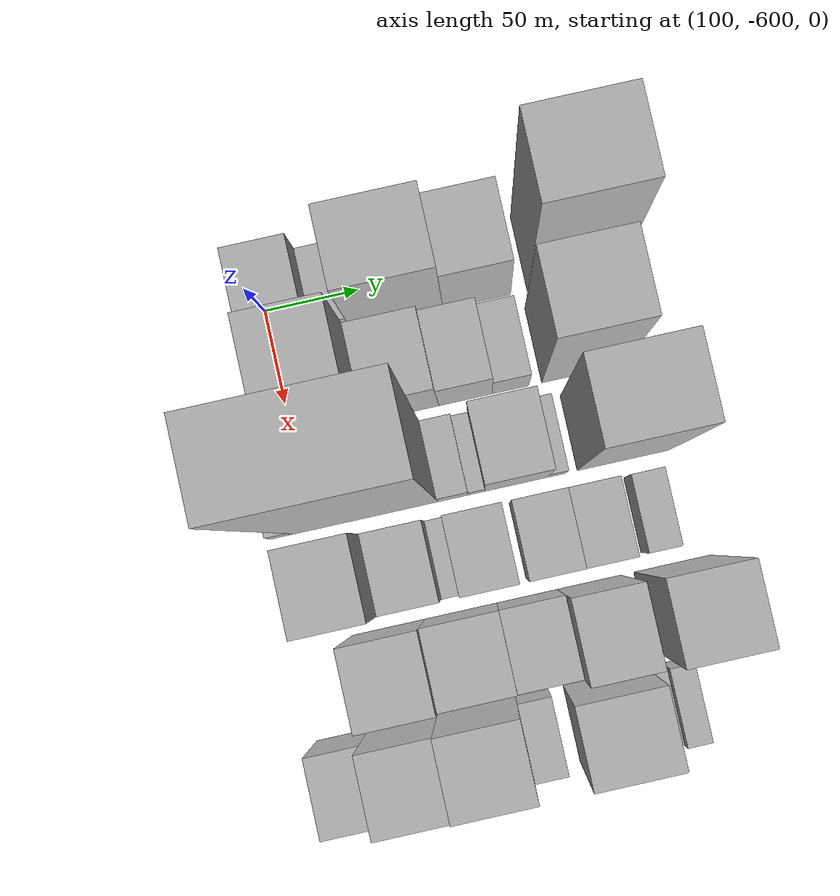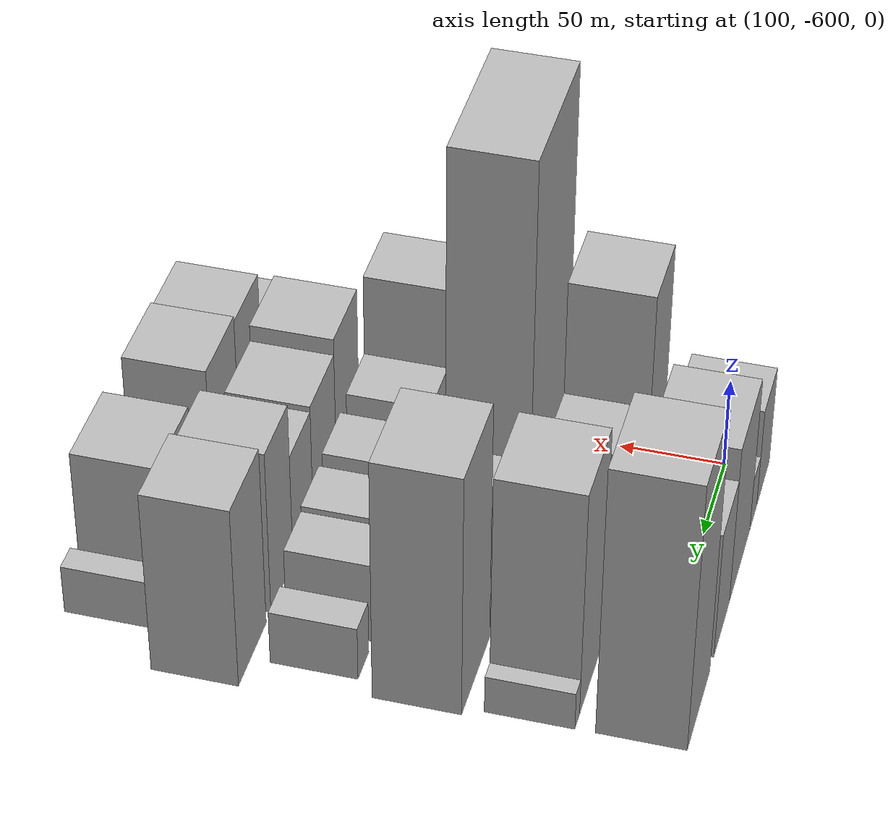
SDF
<sdf version="1.6">
 <world name="default">
  <model name="building_7">
   <static>1</static>
   <pose>100.0000 -591.0079 0 0.000000 0.000000 0.000000</pose>
   <link name="link">
    <pose>0 0 28.50 0 0 0</pose>
    <collision name="collision"><geometry><box><size>40.0000 32.1493 57.0000</size></box></geometry></collision>
    <visual name="visual">
     <cast_shadows>0</cast_shadows>
     <geometry><box><size>40.0000 32.1493 57.0000</size></box></geometry>
     <material>
      <script>
       <uri>model://HANNAS_wall/materials/scripts</uri>
       <uri>model://HANNAS_wall/materials/textures</uri>
       <name>vrc/HANNAS_wall</name>
      </script>
     </material>
    </visual>
   </link>
  </model>
  <model name="building_8">
   <static>1</static>
   <pose>100.0000 -566.2766 0 0.000000 0.000000 0.000000</pose>
   <link name="link">
    <pose>0 0 15.00 0 0 0</pose>
    <collision name="collision"><geometry><box><size>40.0000 17.3134 30.0000</size></box></geometry></collision>
    <visual name="visual">
     <cast_shadows>0</cast_shadows>
     <geometry><box><size>40.0000 17.3134 30.0000</size></box></geometry>
     <material>
      <script>
       <uri>model://HANNAS_wall/materials/scripts</uri>
       <uri>model://HANNAS_wall/materials/textures</uri>
       <name>vrc/HANNAS_wall</name>
      </script>
     </material>
    </visual>
   </link>
  </model>
  <model name="building_9">
   <static>1</static>
   <pose>100.0000 -533.0043 0 0.000000 0.000000 0.000000</pose>
   <link name="link">
    <pose>0 0 45.00 0 0 0</pose>
    <collision name="collision"><geometry><box><size>40.0000 49.2311 90.0000</size></box></geometry></collision>
    <visual name="visual">
     <cast_shadows>0</cast_shadows>
     <geometry><box><size>40.0000 49.2311 90.0000</size></box></geometry>
     <material>
      <script>
       <uri>model://HANNAS_wall/materials/scripts</uri>
       <uri>model://HANNAS_wall/materials/textures</uri>
       <name>vrc/HANNAS_wall</name>
      </script>
     </material>
    </visual>
   </link>
  </model>
  <model name="building_10">
   <static>1</static>
   <pose>100.0000 -490.3262 0 0.000000 0.000000 0.000000</pose>
   <link name="link">
    <pose>0 0 36.00 0 0 0</pose>
    <collision name="collision"><geometry><box><size>40.0000 36.1251 72.0000</size></box></geometry></collision>
    <visual name="visual">
     <cast_shadows>0</cast_shadows>
     <geometry><box><size>40.0000 36.1251 72.0000</size></box></geometry>
     <material>
      <script>
       <uri>model://HANNAS_wall/materials/scripts</uri>
       <uri>model://HANNAS_wall/materials/textures</uri>
       <name>vrc/HANNAS_wall</name>
      </script>
     </material>
    </visual>
   </link>
  </model>
  <model name="building_11">
   <static>1</static>
   <pose>100.0000 -438.5817 0 0.000000 0.000000 0.000000</pose>
   <link name="link">
    <pose>0 0 75.00 0 0 0</pose>
    <collision name="collision"><geometry><box><size>40.0000 49.3639 150.0000</size></box></geometry></collision>
    <visual name="visual">
     <cast_shadows>0</cast_shadows>
     <geometry><box><size>40.0000 49.3639 150.0000</size></box></geometry>
     <material>
      <script>
       <uri>model://HANNAS_wall/materials/scripts</uri>
       <uri>model://HANNAS_wall/materials/textures</uri>
       <name>vrc/HANNAS_wall</name>
      </script>
     </material>
    </visual>
   </link>
  </model>
  <model name="building_56">
   <static>1</static>
   <pose>149.0000 -576.7092 0 0.000000 0.000000 0.000000</pose>
   <link name="link">
    <pose>0 0 63.00 0 0 0</pose>
    <collision name="collision"><geometry><box><size>40.0000 39.1944 126.0000</size></box></geometry></collision>
    <visual name="visual">
     <cast_shadows>0</cast_shadows>
     <geometry><box><size>40.0000 39.1944 126.0000</size></box></geometry>
     <material>
      <script>
       <uri>model://HANNAS_wall/materials/scripts</uri>
       <uri>model://HANNAS_wall/materials/textures</uri>
       <name>vrc/HANNAS_wall</name>
      </script>
     </material>
    </visual>
   </link>
  </model>
  <model name="building_57">
   <static>1</static>
   <pose>149.0000 -539.3363 0 0.000000 0.000000 0.000000</pose>
   <link name="link">
    <pose>0 0 31.50 0 0 0</pose>
    <collision name="collision"><geometry><box><size>40.0000 35.5513 63.0000</size></box></geometry></collision>
    <visual name="visual">
     <cast_shadows>0</cast_shadows>
     <geometry><box><size>40.0000 35.5513 63.0000</size></box></geometry>
     <material>
      <script>
       <uri>model://HANNAS_wall/materials/scripts</uri>
       <uri>model://HANNAS_wall/materials/textures</uri>
       <name>vrc/HANNAS_wall</name>
      </script>
     </material>
    </visual>
   </link>
  </model>
  <model name="building_58">
   <static>1</static>
   <pose>149.0000 -507.3380 0 0.000000 0.000000 0.000000</pose>
   <link name="link">
    <pose>0 0 27.00 0 0 0</pose>
    <collision name="collision"><geometry><box><size>40.0000 28.4451 54.0000</size></box></geometry></collision>
    <visual name="visual">
     <cast_shadows>0</cast_shadows>
     <geometry><box><size>40.0000 28.4451 54.0000</size></box></geometry>
     <material>
      <script>
       <uri>model://HANNAS_wall/materials/scripts</uri>
       <uri>model://HANNAS_wall/materials/textures</uri>
       <name>vrc/HANNAS_wall</name>
      </script>
     </material>
    </visual>
   </link>
  </model>
  <model name="building_59">
   <static>1</static>
   <pose>149.0000 -483.3165 0 0.000000 0.000000 0.000000</pose>
   <link name="link">
    <pose>0 0 19.50 0 0 0</pose>
    <collision name="collision"><geometry><box><size>40.0000 19.5980 39.0000</size></box></geometry></collision>
    <visual name="visual">
     <cast_shadows>0</cast_shadows>
     <geometry><box><size>40.0000 19.5980 39.0000</size></box></geometry>
     <material>
      <script>
       <uri>model://HANNAS_wall/materials/scripts</uri>
       <uri>model://HANNAS_wall/materials/textures</uri>
       <name>vrc/HANNAS_wall</name>
      </script>
     </material>
    </visual>
   </link>
  </model>
  <model name="building_60">
   <static>1</static>
   <pose>149.0000 -444.5563 0 0.000000 0.000000 0.000000</pose>
   <link name="link">
    <pose>0 0 63.00 0 0 0</pose>
    <collision name="collision"><geometry><box><size>40.0000 43.9225 126.0000</size></box></geometry></collision>
    <visual name="visual">
     <cast_shadows>0</cast_shadows>
     <geometry><box><size>40.0000 43.9225 126.0000</size></box></geometry>
     <material>
      <script>
       <uri>model://HANNAS_wall/materials/scripts</uri>
       <uri>model://HANNAS_wall/materials/textures</uri>
       <name>vrc/HANNAS_wall</name>
      </script>
     </material>
    </visual>
   </link>
  </model>
  <model name="building_61">
   <static>1</static>
   <pose>149.0000 -418.1345 0 0.000000 0.000000 0.000000</pose>
   <link name="link">
    <pose>0 0 10.50 0 0 0</pose>
    <collision name="collision"><geometry><box><size>40.0000 8.9210 21.0000</size></box></geometry></collision>
    <visual name="visual">
     <cast_shadows>0</cast_shadows>
     <geometry><box><size>40.0000 8.9210 21.0000</size></box></geometry>
     <material>
      <script>
       <uri>model://HANNAS_wall/materials/scripts</uri>
       <uri>model://HANNAS_wall/materials/textures</uri>
       <name>vrc/HANNAS_wall</name>
      </script>
     </material>
    </visual>
   </link>
  </model>
  <model name="building_100">
   <static>1</static>
   <pose>198.0000 -615.2436 0 0.000000 0.000000 0.000000</pose>
   <link name="link">
    <pose>0 0 12.00 0 0 0</pose>
    <collision name="collision"><geometry><box><size>40.0000 11.6297 24.0000</size></box></geometry></collision>
    <visual name="visual">
     <cast_shadows>0</cast_shadows>
     <geometry><box><size>40.0000 11.6297 24.0000</size></box></geometry>
     <material>
      <script>
       <uri>model://HANNAS_wall/materials/scripts</uri>
       <uri>model://HANNAS_wall/materials/textures</uri>
       <name>vrc/HANNAS_wall</name>
      </script>
     </material>
    </visual>
   </link>
  </model>
  <model name="building_101">
   <static>1</static>
   <pose>198.0000 -571.0643 0 0.000000 0.000000 0.000000</pose>
   <link name="link">
    <pose>0 0 103.50 0 0 0</pose>
    <collision name="collision"><geometry><box><size>40.0000 76.7288 207.0000</size></box></geometry></collision>
    <visual name="visual">
     <cast_shadows>0</cast_shadows>
     <geometry><box><size>40.0000 76.7288 207.0000</size></box></geometry>
     <material>
      <script>
       <uri>model://HANNAS_wall/materials/scripts</uri>
       <uri>model://HANNAS_wall/materials/textures</uri>
       <name>vrc/HANNAS_wall</name>
      </script>
     </material>
    </visual>
   </link>
  </model>
  <model name="building_102">
   <static>1</static>
   <pose>198.0000 -524.7663 0 0.000000 0.000000 0.000000</pose>
   <link name="link">
    <pose>0 0 15.00 0 0 0</pose>
    <collision name="collision"><geometry><box><size>40.0000 15.8673 30.0000</size></box></geometry></collision>
    <visual name="visual">
     <cast_shadows>0</cast_shadows>
     <geometry><box><size>40.0000 15.8673 30.0000</size></box></geometry>
     <material>
      <script>
       <uri>model://HANNAS_wall/materials/scripts</uri>
       <uri>model://HANNAS_wall/materials/textures</uri>
       <name>vrc/HANNAS_wall</name>
      </script>
     </material>
    </visual>
   </link>
  </model>
  <model name="building_103">
   <static>1</static>
   <pose>198.0000 -512.4094 0 0.000000 0.000000 0.000000</pose>
   <link name="link">
    <pose>0 0 10.50 0 0 0</pose>
    <collision name="collision"><geometry><box><size>40.0000 8.8465 21.0000</size></box></geometry></collision>
    <visual name="visual">
     <cast_shadows>0</cast_shadows>
     <geometry><box><size>40.0000 8.8465 21.0000</size></box></geometry>
     <material>
      <script>
       <uri>model://HANNAS_wall/materials/scripts</uri>
       <uri>model://HANNAS_wall/materials/textures</uri>
       <name>vrc/HANNAS_wall</name>
      </script>
     </material>
    </visual>
   </link>
  </model>
  <model name="building_104">
   <static>1</static>
   <pose>198.0000 -491.0262 0 0.000000 0.000000 0.000000</pose>
   <link name="link">
    <pose>0 0 31.50 0 0 0</pose>
    <collision name="collision"><geometry><box><size>40.0000 33.9198 63.0000</size></box></geometry></collision>
    <visual name="visual">
     <cast_shadows>0</cast_shadows>
     <geometry><box><size>40.0000 33.9198 63.0000</size></box></geometry>
     <material>
      <script>
       <uri>model://HANNAS_wall/materials/scripts</uri>
       <uri>model://HANNAS_wall/materials/textures</uri>
       <name>vrc/HANNAS_wall</name>
      </script>
     </material>
    </visual>
   </link>
  </model>
  <model name="building_105">
   <static>1</static>
   <pose>198.0000 -469.3409 0 0.000000 0.000000 0.000000</pose>
   <link name="link">
    <pose>0 0 10.50 0 0 0</pose>
    <collision name="collision"><geometry><box><size>40.0000 9.4509 21.0000</size></box></geometry></collision>
    <visual name="visual">
     <cast_shadows>0</cast_shadows>
     <geometry><box><size>40.0000 9.4509 21.0000</size></box></geometry>
     <material>
      <script>
       <uri>model://HANNAS_wall/materials/scripts</uri>
       <uri>model://HANNAS_wall/materials/textures</uri>
       <name>vrc/HANNAS_wall</name>
      </script>
     </material>
    </visual>
   </link>
  </model>
  <model name="building_106">
   <static>1</static>
   <pose>198.0000 -433.9905 0 0.000000 0.000000 0.000000</pose>
   <link name="link">
    <pose>0 0 67.50 0 0 0</pose>
    <collision name="collision"><geometry><box><size>40.0000 49.2500 135.0000</size></box></geometry></collision>
    <visual name="visual">
     <cast_shadows>0</cast_shadows>
     <geometry><box><size>40.0000 49.2500 135.0000</size></box></geometry>
     <material>
      <script>
       <uri>model://HANNAS_wall/materials/scripts</uri>
       <uri>model://HANNAS_wall/materials/textures</uri>
       <name>vrc/HANNAS_wall</name>
      </script>
     </material>
    </visual>
   </link>
  </model>
  <model name="building_151">
   <static>1</static>
   <pose>247.0000 -588.7741 0 0.000000 0.000000 0.000000</pose>
   <link name="link">
    <pose>0 0 49.50 0 0 0</pose>
    <collision name="collision"><geometry><box><size>40.0000 34.7493 99.0000</size></box></geometry></collision>
    <visual name="visual">
     <cast_shadows>0</cast_shadows>
     <geometry><box><size>40.0000 34.7493 99.0000</size></box></geometry>
     <material>
      <script>
       <uri>model://HANNAS_wall/materials/scripts</uri>
       <uri>model://HANNAS_wall/materials/textures</uri>
       <name>vrc/HANNAS_wall</name>
      </script>
     </material>
    </visual>
   </link>
  </model>
  <model name="building_152">
   <static>1</static>
   <pose>247.0000 -556.2674 0 0.000000 0.000000 0.000000</pose>
   <link name="link">
    <pose>0 0 27.00 0 0 0</pose>
    <collision name="collision"><geometry><box><size>40.0000 30.2640 54.0000</size></box></geometry></collision>
    <visual name="visual">
     <cast_shadows>0</cast_shadows>
     <geometry><box><size>40.0000 30.2640 54.0000</size></box></geometry>
     <material>
      <script>
       <uri>model://HANNAS_wall/materials/scripts</uri>
       <uri>model://HANNAS_wall/materials/textures</uri>
       <name>vrc/HANNAS_wall</name>
      </script>
     </material>
    </visual>
   </link>
  </model>
  <model name="building_153">
   <static>1</static>
   <pose>247.0000 -536.3024 0 0.000000 0.000000 0.000000</pose>
   <link name="link">
    <pose>0 0 12.00 0 0 0</pose>
    <collision name="collision"><geometry><box><size>40.0000 9.6661 24.0000</size></box></geometry></collision>
    <visual name="visual">
     <cast_shadows>0</cast_shadows>
     <geometry><box><size>40.0000 9.6661 24.0000</size></box></geometry>
     <material>
      <script>
       <uri>model://HANNAS_wall/materials/scripts</uri>
       <uri>model://HANNAS_wall/materials/textures</uri>
       <name>vrc/HANNAS_wall</name>
      </script>
     </material>
    </visual>
   </link>
  </model>
  <model name="building_154">
   <static>1</static>
   <pose>247.0000 -516.7449 0 0.000000 0.000000 0.000000</pose>
   <link name="link">
    <pose>0 0 25.50 0 0 0</pose>
    <collision name="collision"><geometry><box><size>40.0000 29.4489 51.0000</size></box></geometry></collision>
    <visual name="visual">
     <cast_shadows>0</cast_shadows>
     <geometry><box><size>40.0000 29.4489 51.0000</size></box></geometry>
     <material>
      <script>
       <uri>model://HANNAS_wall/materials/scripts</uri>
       <uri>model://HANNAS_wall/materials/textures</uri>
       <name>vrc/HANNAS_wall</name>
      </script>
     </material>
    </visual>
   </link>
  </model>
  <model name="building_155">
   <static>1</static>
   <pose>247.0000 -483.0226 0 0.000000 0.000000 0.000000</pose>
   <link name="link">
    <pose>0 0 24.00 0 0 0</pose>
    <collision name="collision"><geometry><box><size>40.0000 27.9957 48.0000</size></box></geometry></collision>
    <visual name="visual">
     <cast_shadows>0</cast_shadows>
     <geometry><box><size>40.0000 27.9957 48.0000</size></box></geometry>
     <material>
      <script>
       <uri>model://HANNAS_wall/materials/scripts</uri>
       <uri>model://HANNAS_wall/materials/textures</uri>
       <name>vrc/HANNAS_wall</name>
      </script>
     </material>
    </visual>
   </link>
  </model>
  <model name="building_156">
   <static>1</static>
   <pose>247.0000 -455.8948 0 0.000000 0.000000 0.000000</pose>
   <link name="link">
    <pose>0 0 22.50 0 0 0</pose>
    <collision name="collision"><geometry><box><size>40.0000 26.2597 45.0000</size></box></geometry></collision>
    <visual name="visual">
     <cast_shadows>0</cast_shadows>
     <geometry><box><size>40.0000 26.2597 45.0000</size></box></geometry>
     <material>
      <script>
       <uri>model://HANNAS_wall/materials/scripts</uri>
       <uri>model://HANNAS_wall/materials/textures</uri>
       <name>vrc/HANNAS_wall</name>
      </script>
     </material>
    </visual>
   </link>
  </model>
  <model name="building_157">
   <static>1</static>
   <pose>247.0000 -427.1532 0 0.000000 0.000000 0.000000</pose>
   <link name="link">
    <pose>0 0 15.00 0 0 0</pose>
    <collision name="collision"><geometry><box><size>40.0000 17.2235 30.0000</size></box></geometry></collision>
    <visual name="visual">
     <cast_shadows>0</cast_shadows>
     <geometry><box><size>40.0000 17.2235 30.0000</size></box></geometry>
     <material>
      <script>
       <uri>model://HANNAS_wall/materials/scripts</uri>
       <uri>model://HANNAS_wall/materials/textures</uri>
       <name>vrc/HANNAS_wall</name>
      </script>
     </material>
    </visual>
   </link>
  </model>
  <model name="building_206">
   <static>1</static>
   <pose>296.0000 -571.8528 0 0.000000 0.000000 0.000000</pose>
   <link name="link">
    <pose>0 0 37.50 0 0 0</pose>
    <collision name="collision"><geometry><box><size>40.0000 38.4929 75.0000</size></box></geometry></collision>
    <visual name="visual">
     <cast_shadows>0</cast_shadows>
     <geometry><box><size>40.0000 38.4929 75.0000</size></box></geometry>
     <material>
      <script>
       <uri>model://HANNAS_wall/materials/scripts</uri>
       <uri>model://HANNAS_wall/materials/textures</uri>
       <name>vrc/HANNAS_wall</name>
      </script>
     </material>
    </visual>
   </link>
  </model>
  <model name="building_207">
   <static>1</static>
   <pose>296.0000 -533.5775 0 0.000000 0.000000 0.000000</pose>
   <link name="link">
    <pose>0 0 33.00 0 0 0</pose>
    <collision name="collision"><geometry><box><size>40.0000 38.0575 66.0000</size></box></geometry></collision>
    <visual name="visual">
     <cast_shadows>0</cast_shadows>
     <geometry><box><size>40.0000 38.0575 66.0000</size></box></geometry>
     <material>
      <script>
       <uri>model://HANNAS_wall/materials/scripts</uri>
       <uri>model://HANNAS_wall/materials/textures</uri>
       <name>vrc/HANNAS_wall</name>
      </script>
     </material>
    </visual>
   </link>
  </model>
  <model name="building_208">
   <static>1</static>
   <pose>296.0000 -498.5842 0 0.000000 0.000000 0.000000</pose>
   <link name="link">
    <pose>0 0 31.50 0 0 0</pose>
    <collision name="collision"><geometry><box><size>40.0000 31.9292 63.0000</size></box></geometry></collision>
    <visual name="visual">
     <cast_shadows>0</cast_shadows>
     <geometry><box><size>40.0000 31.9292 63.0000</size></box></geometry>
     <material>
      <script>
       <uri>model://HANNAS_wall/materials/scripts</uri>
       <uri>model://HANNAS_wall/materials/textures</uri>
       <name>vrc/HANNAS_wall</name>
      </script>
     </material>
    </visual>
   </link>
  </model>
  <model name="building_209">
   <static>1</static>
   <pose>296.0000 -465.6482 0 0.000000 0.000000 0.000000</pose>
   <link name="link">
    <pose>0 0 46.50 0 0 0</pose>
    <collision name="collision"><geometry><box><size>40.0000 33.9427 93.0000</size></box></geometry></collision>
    <visual name="visual">
     <cast_shadows>0</cast_shadows>
     <geometry><box><size>40.0000 33.9427 93.0000</size></box></geometry>
     <material>
      <script>
       <uri>model://HANNAS_wall/materials/scripts</uri>
       <uri>model://HANNAS_wall/materials/textures</uri>
       <name>vrc/HANNAS_wall</name>
      </script>
     </material>
    </visual>
   </link>
  </model>
  <model name="building_210">
   <static>1</static>
   <pose>296.0000 -421.3085 0 0.000000 0.000000 0.000000</pose>
   <link name="link">
    <pose>0 0 51.00 0 0 0</pose>
    <collision name="collision"><geometry><box><size>40.0000 40.7367 102.0000</size></box></geometry></collision>
    <visual name="visual">
     <cast_shadows>0</cast_shadows>
     <geometry><box><size>40.0000 40.7367 102.0000</size></box></geometry>
     <material>
      <script>
       <uri>model://HANNAS_wall/materials/scripts</uri>
       <uri>model://HANNAS_wall/materials/textures</uri>
       <name>vrc/HANNAS_wall</name>
      </script>
     </material>
    </visual>
   </link>
  </model>
  <model name="building_251">
   <static>1</static>
   <pose>345.0000 -607.1718 0 0.000000 0.000000 0.000000</pose>
   <link name="link">
    <pose>0 0 24.00 0 0 0</pose>
    <collision name="collision"><geometry><box><size>40.0000 27.2958 48.0000</size></box></geometry></collision>
    <visual name="visual">
     <cast_shadows>0</cast_shadows>
     <geometry><box><size>40.0000 27.2958 48.0000</size></box></geometry>
     <material>
      <script>
       <uri>model://HANNAS_wall/materials/scripts</uri>
       <uri>model://HANNAS_wall/materials/textures</uri>
       <name>vrc/HANNAS_wall</name>
      </script>
     </material>
    </visual>
   </link>
  </model>
  <model name="building_252">
   <static>1</static>
   <pose>345.0000 -575.2572 0 0.000000 0.000000 0.000000</pose>
   <link name="link">
    <pose>0 0 36.00 0 0 0</pose>
    <collision name="collision"><geometry><box><size>40.0000 36.5335 72.0000</size></box></geometry></collision>
    <visual name="visual">
     <cast_shadows>0</cast_shadows>
     <geometry><box><size>40.0000 36.5335 72.0000</size></box></geometry>
     <material>
      <script>
       <uri>model://HANNAS_wall/materials/scripts</uri>
       <uri>model://HANNAS_wall/materials/textures</uri>
       <name>vrc/HANNAS_wall</name>
      </script>
     </material>
    </visual>
   </link>
  </model>
  <model name="building_253">
   <static>1</static>
   <pose>345.0000 -536.3727 0 0.000000 0.000000 0.000000</pose>
   <link name="link">
    <pose>0 0 37.50 0 0 0</pose>
    <collision name="collision"><geometry><box><size>40.0000 41.2356 75.0000</size></box></geometry></collision>
    <visual name="visual">
     <cast_shadows>0</cast_shadows>
     <geometry><box><size>40.0000 41.2356 75.0000</size></box></geometry>
     <material>
      <script>
       <uri>model://HANNAS_wall/materials/scripts</uri>
       <uri>model://HANNAS_wall/materials/textures</uri>
       <name>vrc/HANNAS_wall</name>
      </script>
     </material>
    </visual>
   </link>
  </model>
  <model name="building_254">
   <static>1</static>
   <pose>345.0000 -507.1470 0 0.000000 0.000000 0.000000</pose>
   <link name="link">
    <pose>0 0 15.00 0 0 0</pose>
    <collision name="collision"><geometry><box><size>40.0000 17.2157 30.0000</size></box></geometry></collision>
    <visual name="visual">
     <cast_shadows>0</cast_shadows>
     <geometry><box><size>40.0000 17.2157 30.0000</size></box></geometry>
     <material>
      <script>
       <uri>model://HANNAS_wall/materials/scripts</uri>
       <uri>model://HANNAS_wall/materials/textures</uri>
       <name>vrc/HANNAS_wall</name>
      </script>
     </material>
    </visual>
   </link>
  </model>
  <model name="building_255">
   <static>1</static>
   <pose>345.0000 -468.7054 0 0.000000 0.000000 0.000000</pose>
   <link name="link">
    <pose>0 0 37.50 0 0 0</pose>
    <collision name="collision"><geometry><box><size>40.0000 43.6675 75.0000</size></box></geometry></collision>
    <visual name="visual">
     <cast_shadows>0</cast_shadows>
     <geometry><box><size>40.0000 43.6675 75.0000</size></box></geometry>
     <material>
      <script>
       <uri>model://HANNAS_wall/materials/scripts</uri>
       <uri>model://HANNAS_wall/materials/textures</uri>
       <name>vrc/HANNAS_wall</name>
      </script>
     </material>
    </visual>
   </link>
  </model>
  <model name="building_256">
   <static>1</static>
   <pose>345.0000 -442.5919 0 0.000000 0.000000 0.000000</pose>
   <link name="link">
    <pose>0 0 9.00 0 0 0</pose>
    <collision name="collision"><geometry><box><size>40.0000 8.5594 18.0000</size></box></geometry></collision>
    <visual name="visual">
     <cast_shadows>0</cast_shadows>
     <geometry><box><size>40.0000 8.5594 18.0000</size></box></geometry>
     <material>
      <script>
       <uri>model://HANNAS_wall/materials/scripts</uri>
       <uri>model://HANNAS_wall/materials/textures</uri>
       <name>vrc/HANNAS_wall</name>
      </script>
     </material>
    </visual>
   </link>
  </model>
  <model name="building_257">
   <static>1</static>
   <pose>345.0000 -431.8913 0 0.000000 0.000000 0.000000</pose>
   <link name="link">
    <pose>0 0 13.50 0 0 0</pose>
    <collision name="collision"><geometry><box><size>40.0000 12.8418 27.0000</size></box></geometry></collision>
    <visual name="visual">
     <cast_shadows>0</cast_shadows>
     <geometry><box><size>40.0000 12.8418 27.0000</size></box></geometry>
     <material>
      <script>
       <uri>model://HANNAS_wall/materials/scripts</uri>
       <uri>model://HANNAS_wall/materials/textures</uri>
       <name>vrc/HANNAS_wall</name>
      </script>
     </material>
    </visual>
   </link>
  </model>
 </world>
</sdf>
